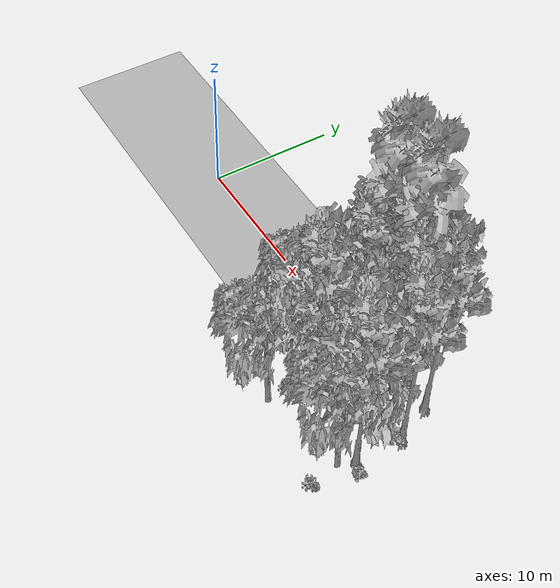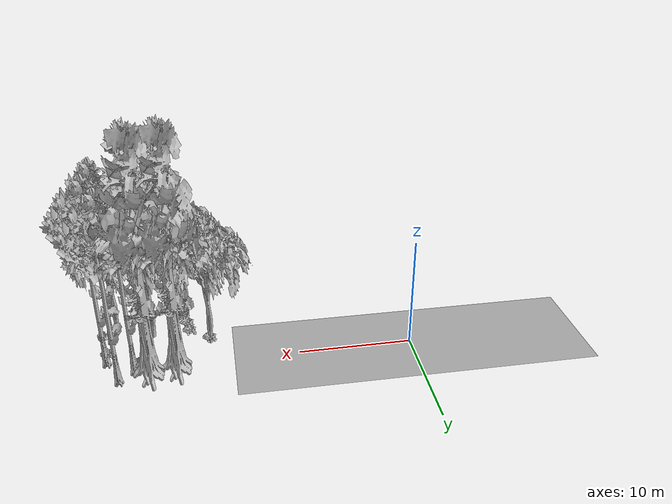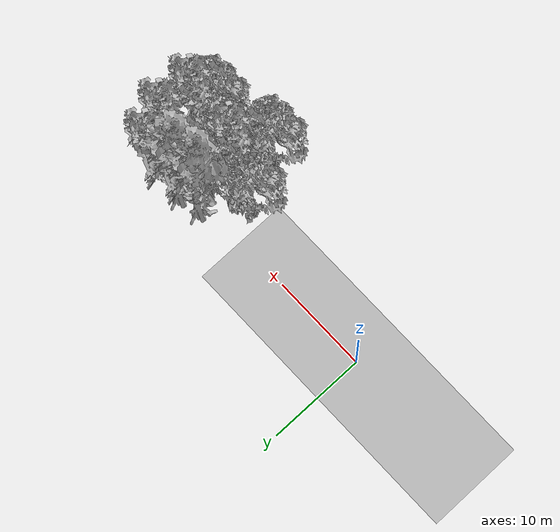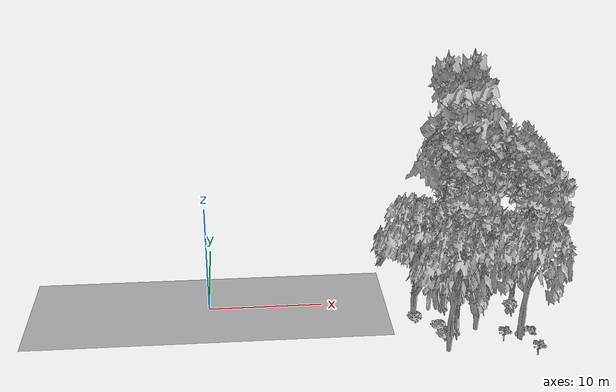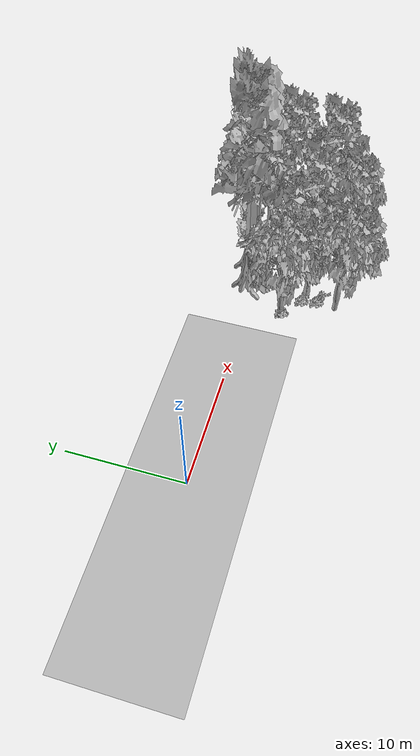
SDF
<sdf version="1.7">
 <world name="default">
  <model name="ground_plane">
   <static>1</static>
   <link name="link">
    <collision name="collision">
     <geometry><plane><normal>0 0 1</normal><size>100 100</size></plane></geometry>
     <surface><contact><ode><min_depth>0.01</min_depth><max_vel>0</max_vel></ode></contact></surface>
    </collision>
    <visual name="grass">
     <cast_shadows>0</cast_shadows>
     <geometry>
      <mesh>
       <scale>0.5814285714285714 0.18142857142857144 0.1</scale>
       <uri>file://grass_plane/meshes/grass_plane.dae</uri>
      </mesh>
     </geometry>
    </visual>
   </link>
  </model>
  <model name="Tree 38">
   <static>1</static>
   <pose>20.81536354934164 -0.9336809488409585 0 1.57079 -0 0</pose>
   <link name="link">
    <collision name="collision">
     <geometry><mesh><scale>3.5 5 3.5</scale><uri>model://tree_9/meshes/tree_9.obj</uri></mesh></geometry>
    </collision>
    <visual name="visual">
     <geometry><mesh><scale>3.5 5 3.5</scale><uri>model://tree_9/meshes/tree_9.obj</uri></mesh></geometry>
    </visual>
   </link>
  </model>
  <model name="Tree 55">
   <static>1</static>
   <pose>22.747549261659756 1.039640632710011 0 1.57079 -0 0</pose>
   <link name="link">
    <collision name="collision">
     <geometry><mesh><scale>3.5 5 3.5</scale><uri>model://tree_4/meshes/tree_4.obj</uri></mesh></geometry>
    </collision>
    <visual name="visual">
     <geometry><mesh><scale>3.5 5 3.5</scale><uri>model://tree_4/meshes/tree_4.obj</uri></mesh></geometry>
    </visual>
   </link>
  </model>
  <model name="Tree 70">
   <static>1</static>
   <pose>25.494457328623326 1.1537756603136842 0 1.57079 -0 0</pose>
   <link name="link">
    <collision name="collision">
     <geometry><mesh><scale>3.5 5 3.5</scale><uri>model://tree_9/meshes/tree_9.obj</uri></mesh></geometry>
    </collision>
    <visual name="visual">
     <geometry><mesh><scale>3.5 5 3.5</scale><uri>model://tree_9/meshes/tree_9.obj</uri></mesh></geometry>
    </visual>
   </link>
  </model>
  <model name="Tree 117">
   <static>1</static>
   <pose>17.573473494720105 -2.8924591569374165 0 1.57079 -0 0</pose>
   <link name="link">
    <collision name="collision">
     <geometry><mesh><scale>3.5 5 3.5</scale><uri>model://tree_2/meshes/tree_2.obj</uri></mesh></geometry>
    </collision>
    <visual name="visual">
     <geometry><mesh><scale>3.5 5 3.5</scale><uri>model://tree_2/meshes/tree_2.obj</uri></mesh></geometry>
    </visual>
   </link>
  </model>
  <model name="Tree 194">
   <static>1</static>
   <pose>26.030440559370007 -6.167813019674211 0 1.57079 -0 0</pose>
   <link name="link">
    <collision name="collision">
     <geometry><mesh><scale>3.5 5 3.5</scale><uri>model://tree_2/meshes/tree_2.obj</uri></mesh></geometry>
    </collision>
    <visual name="visual">
     <geometry><mesh><scale>3.5 5 3.5</scale><uri>model://tree_2/meshes/tree_2.obj</uri></mesh></geometry>
    </visual>
   </link>
  </model>
  <model name="Tree 237">
   <static>1</static>
   <pose>22.660081256369054 -4.589852064707479 0 1.57079 -0 0</pose>
   <link name="link">
    <collision name="collision">
     <geometry><mesh><scale>3.5 5 3.5</scale><uri>model://tree_2/meshes/tree_2.obj</uri></mesh></geometry>
    </collision>
    <visual name="visual">
     <geometry><mesh><scale>3.5 5 3.5</scale><uri>model://tree_2/meshes/tree_2.obj</uri></mesh></geometry>
    </visual>
   </link>
  </model>
  <model name="Tree 257">
   <static>1</static>
   <pose>26.56474590434111 -5.024771224379634 0 1.57079 -0 0</pose>
   <link name="link">
    <collision name="collision">
     <geometry><mesh><scale>3.5 5 3.5</scale><uri>model://tree_9/meshes/tree_9.obj</uri></mesh></geometry>
    </collision>
    <visual name="visual">
     <geometry><mesh><scale>3.5 5 3.5</scale><uri>model://tree_9/meshes/tree_9.obj</uri></mesh></geometry>
    </visual>
   </link>
  </model>
  <model name="Tree 296">
   <static>1</static>
   <pose>20.469288890295203 0.635117230320251 0 1.57079 -0 0</pose>
   <link name="link">
    <collision name="collision">
     <geometry><mesh><scale>3.5 5 3.5</scale><uri>model://tree_4/meshes/tree_4.obj</uri></mesh></geometry>
    </collision>
    <visual name="visual">
     <geometry><mesh><scale>3.5 5 3.5</scale><uri>model://tree_4/meshes/tree_4.obj</uri></mesh></geometry>
    </visual>
   </link>
  </model>
  <model name="Tree 319">
   <static>1</static>
   <pose>19.670981407943046 -7.392786884566821 0 1.57079 -0 0</pose>
   <link name="link">
    <collision name="collision">
     <geometry><mesh><scale>3.5 5 3.5</scale><uri>model://tree_2/meshes/tree_2.obj</uri></mesh></geometry>
    </collision>
    <visual name="visual">
     <geometry><mesh><scale>3.5 5 3.5</scale><uri>model://tree_2/meshes/tree_2.obj</uri></mesh></geometry>
    </visual>
   </link>
  </model>
  <model name="Tree 398">
   <static>1</static>
   <pose>21.023761147881373 -4.57473418023168 0 1.57079 -0 0</pose>
   <link name="link">
    <collision name="collision">
     <geometry><mesh><scale>3.5 5 3.5</scale><uri>model://tree_9/meshes/tree_9.obj</uri></mesh></geometry>
    </collision>
    <visual name="visual">
     <geometry><mesh><scale>3.5 5 3.5</scale><uri>model://tree_9/meshes/tree_9.obj</uri></mesh></geometry>
    </visual>
   </link>
  </model>
  <model name="Tree 401">
   <static>1</static>
   <pose>26.720996536080293 -1.5754394013813595 0 1.57079 -0 0</pose>
   <link name="link">
    <collision name="collision">
     <geometry><mesh><scale>3.5 5 3.5</scale><uri>model://tree_9/meshes/tree_9.obj</uri></mesh></geometry>
    </collision>
    <visual name="visual">
     <geometry><mesh><scale>3.5 5 3.5</scale><uri>model://tree_9/meshes/tree_9.obj</uri></mesh></geometry>
    </visual>
   </link>
  </model>
  <model name="Tree 404">
   <static>1</static>
   <pose>24.238192615125115 -0.0745394114006519 0 1.57079 -0 0</pose>
   <link name="link">
    <collision name="collision">
     <geometry><mesh><scale>3.5 5 3.5</scale><uri>model://tree_9/meshes/tree_9.obj</uri></mesh></geometry>
    </collision>
    <visual name="visual">
     <geometry><mesh><scale>3.5 5 3.5</scale><uri>model://tree_9/meshes/tree_9.obj</uri></mesh></geometry>
    </visual>
   </link>
  </model>
  <model name="Bush 15">
   <static>1</static>
   <pose>23.688082286903665 -0.904129045393061 0 1.57079 -0 0</pose>
   <link name="link">
    <collision name="collision">
     <geometry><mesh><scale>2 2 2</scale><uri>model://bush_2/meshes/bush_2.obj</uri></mesh></geometry>
     <surface><contact><collide_without_contact>false</collide_without_contact></contact></surface>
    </collision>
    <visual name="visual">
     <geometry><mesh><scale>2 2 2</scale><uri>model://bush_2/meshes/bush_2.obj</uri></mesh></geometry>
    </visual>
   </link>
  </model>
  <model name="Bush 79">
   <static>1</static>
   <pose>19.800740828296497 -5.679750813701835 0 1.57079 -0 0</pose>
   <link name="link">
    <collision name="collision">
     <geometry><mesh><scale>2 2 2</scale><uri>model://bush_3/meshes/bush_3.obj</uri></mesh></geometry>
     <surface><contact><collide_without_contact>false</collide_without_contact></contact></surface>
    </collision>
    <visual name="visual">
     <geometry><mesh><scale>2 2 2</scale><uri>model://bush_3/meshes/bush_3.obj</uri></mesh></geometry>
    </visual>
   </link>
  </model>
  <model name="Bush 141">
   <static>1</static>
   <pose>26.63289629394734 -1.8221086496770873 0 1.57079 -0 0</pose>
   <link name="link">
    <collision name="collision">
     <geometry><mesh><scale>2 2 2</scale><uri>model://bush_3/meshes/bush_3.obj</uri></mesh></geometry>
     <surface><contact><collide_without_contact>false</collide_without_contact></contact></surface>
    </collision>
    <visual name="visual">
     <geometry><mesh><scale>2 2 2</scale><uri>model://bush_3/meshes/bush_3.obj</uri></mesh></geometry>
    </visual>
   </link>
  </model>
  <model name="Bush 165">
   <static>1</static>
   <pose>19.601977502578976 -4.3872043491845805 0 1.57079 -0 0</pose>
   <link name="link">
    <collision name="collision">
     <geometry><mesh><scale>2 2 2</scale><uri>model://bush_3/meshes/bush_3.obj</uri></mesh></geometry>
     <surface><contact><collide_without_contact>false</collide_without_contact></contact></surface>
    </collision>
    <visual name="visual">
     <geometry><mesh><scale>2 2 2</scale><uri>model://bush_3/meshes/bush_3.obj</uri></mesh></geometry>
    </visual>
   </link>
  </model>
  <model name="Bush 173">
   <static>1</static>
   <pose>20.15529303980159 -6.053429782441132 0 1.57079 -0 0</pose>
   <link name="link">
    <collision name="collision">
     <geometry><mesh><scale>2 2 2</scale><uri>model://bush_5/meshes/bush_5.obj</uri></mesh></geometry>
     <surface><contact><collide_without_contact>false</collide_without_contact></contact></surface>
    </collision>
    <visual name="visual">
     <geometry><mesh><scale>2 2 2</scale><uri>model://bush_5/meshes/bush_5.obj</uri></mesh></geometry>
    </visual>
   </link>
  </model>
  <model name="Bush 205">
   <static>1</static>
   <pose>23.52629281339219 0.35916129919549 0 1.57079 -0 0</pose>
   <link name="link">
    <collision name="collision">
     <geometry><mesh><scale>2 2 2</scale><uri>model://bush_3/meshes/bush_3.obj</uri></mesh></geometry>
     <surface><contact><collide_without_contact>false</collide_without_contact></contact></surface>
    </collision>
    <visual name="visual">
     <geometry><mesh><scale>2 2 2</scale><uri>model://bush_3/meshes/bush_3.obj</uri></mesh></geometry>
    </visual>
   </link>
  </model>
  <model name="Bush 211">
   <static>1</static>
   <pose>27.280234151892685 -5.2855296397850875 0 1.57079 -0 0</pose>
   <link name="link">
    <collision name="collision">
     <geometry><mesh><scale>2 2 2</scale><uri>model://bush_2/meshes/bush_2.obj</uri></mesh></geometry>
     <surface><contact><collide_without_contact>false</collide_without_contact></contact></surface>
    </collision>
    <visual name="visual">
     <geometry><mesh><scale>2 2 2</scale><uri>model://bush_2/meshes/bush_2.obj</uri></mesh></geometry>
    </visual>
   </link>
  </model>
  <model name="Bush 235">
   <static>1</static>
   <pose>24.676848653451827 -6.431424548641807 0 1.57079 -0 0</pose>
   <link name="link">
    <collision name="collision">
     <geometry><mesh><scale>2 2 2</scale><uri>model://bush_5/meshes/bush_5.obj</uri></mesh></geometry>
     <surface><contact><collide_without_contact>false</collide_without_contact></contact></surface>
    </collision>
    <visual name="visual">
     <geometry><mesh><scale>2 2 2</scale><uri>model://bush_5/meshes/bush_5.obj</uri></mesh></geometry>
    </visual>
   </link>
  </model>
  <model name="Bush 247">
   <static>1</static>
   <pose>26.919669453318406 -8.500392486016347 0 1.57079 -0 0</pose>
   <link name="link">
    <collision name="collision">
     <geometry><mesh><scale>2 2 2</scale><uri>model://bush_5/meshes/bush_5.obj</uri></mesh></geometry>
     <surface><contact><collide_without_contact>false</collide_without_contact></contact></surface>
    </collision>
    <visual name="visual">
     <geometry><mesh><scale>2 2 2</scale><uri>model://bush_5/meshes/bush_5.obj</uri></mesh></geometry>
    </visual>
   </link>
  </model>
  <model name="Bush 259">
   <static>1</static>
   <pose>17.818988253109893 -2.9882203014784636 0 1.57079 -0 0</pose>
   <link name="link">
    <collision name="collision">
     <geometry><mesh><scale>2 2 2</scale><uri>model://bush_3/meshes/bush_3.obj</uri></mesh></geometry>
     <surface><contact><collide_without_contact>false</collide_without_contact></contact></surface>
    </collision>
    <visual name="visual">
     <geometry><mesh><scale>2 2 2</scale><uri>model://bush_3/meshes/bush_3.obj</uri></mesh></geometry>
    </visual>
   </link>
  </model>
 </world>
</sdf>
